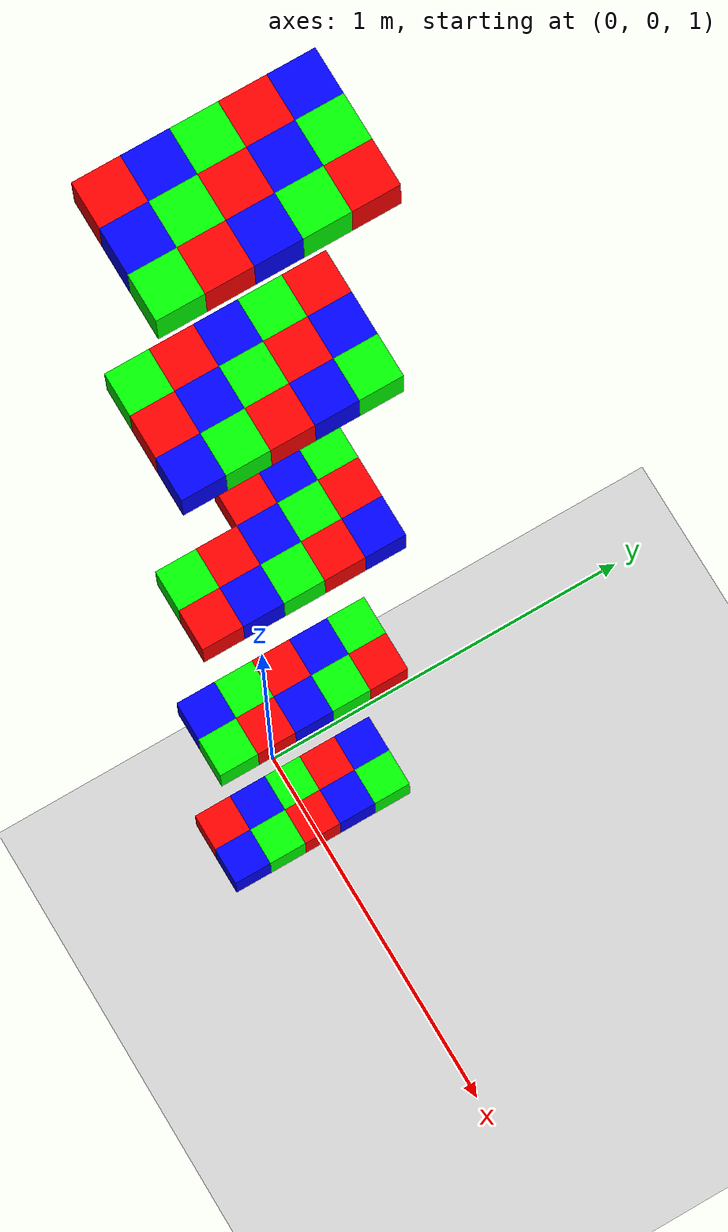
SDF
<sdf version="1.12">
 <world name="boxes_stack">
  <model name="ground_plane">
   <static>true</static>
   <link name="link">
    <collision name="collision"><geometry><plane><normal>0 0 1</normal></plane></geometry></collision>
    <visual name="visual">
     <geometry><plane><normal>0 0 1</normal><size>100 100</size></plane></geometry>
     <material>
      <ambient>0.8 0.8 0.8 1</ambient>
      <diffuse>0.8 0.8 0.8 1</diffuse>
      <specular>0.8 0.8 0.8 1</specular>
     </material>
    </visual>
   </link>
  </model>
  <model name="box_15">
   <pose>0.1 -0.2 1.05 0 0 0</pose>
   <link name="box_link">
    <inertial auto="true"/>
    <collision name="box_collision">
     <density>1000</density>
     <geometry><box><size>0.1 0.1 0.1</size></box></geometry>
    </collision>
    <visual name="box_visual">
     <geometry><box><size>0.1 0.1 0.1</size></box></geometry>
     <material>
      <ambient>1 0 0 1</ambient>
      <diffuse>1 0 0 1</diffuse>
      <specular>1 1 1 1</specular>
      <pbr><metal><metalness>0.1</metalness><roughness>0.3</roughness></metal></pbr>
     </material>
    </visual>
   </link>
  </model>
  <model name="box_16">
   <pose>0.1 -0.1 1.05 0 0 0</pose>
   <link name="box_link">
    <inertial auto="true"/>
    <collision name="box_collision">
     <density>1000</density>
     <geometry><box><size>0.1 0.1 0.1</size></box></geometry>
    </collision>
    <visual name="box_visual">
     <geometry><box><size>0.1 0.1 0.1</size></box></geometry>
     <material>
      <ambient>0 0 1 1</ambient>
      <diffuse>0 0 1 1</diffuse>
      <specular>1 1 1 1</specular>
      <pbr><metal><metalness>0.1</metalness><roughness>0.3</roughness></metal></pbr>
     </material>
    </visual>
   </link>
  </model>
  <model name="box_17">
   <pose>0.1 0 1.05 0 0 0</pose>
   <link name="box_link">
    <inertial auto="true"/>
    <collision name="box_collision">
     <density>1000</density>
     <geometry><box><size>0.1 0.1 0.1</size></box></geometry>
    </collision>
    <visual name="box_visual">
     <geometry><box><size>0.1 0.1 0.1</size></box></geometry>
     <material>
      <ambient>0 1 0 1</ambient>
      <diffuse>0 1 0 1</diffuse>
      <specular>1 1 1 1</specular>
      <pbr><metal><metalness>0.1</metalness><roughness>0.3</roughness></metal></pbr>
     </material>
    </visual>
   </link>
  </model>
  <model name="box_18">
   <pose>0.1 0.1 1.05 0 0 0</pose>
   <link name="box_link">
    <inertial auto="true"/>
    <collision name="box_collision">
     <density>1000</density>
     <geometry><box><size>0.1 0.1 0.1</size></box></geometry>
    </collision>
    <visual name="box_visual">
     <geometry><box><size>0.1 0.1 0.1</size></box></geometry>
     <material>
      <ambient>1 0 0 1</ambient>
      <diffuse>1 0 0 1</diffuse>
      <specular>1 1 1 1</specular>
      <pbr><metal><metalness>0.1</metalness><roughness>0.3</roughness></metal></pbr>
     </material>
    </visual>
   </link>
  </model>
  <model name="box_19">
   <pose>0.1 0.2 1.05 0 0 0</pose>
   <link name="box_link">
    <inertial auto="true"/>
    <collision name="box_collision">
     <density>1000</density>
     <geometry><box><size>0.1 0.1 0.1</size></box></geometry>
    </collision>
    <visual name="box_visual">
     <geometry><box><size>0.1 0.1 0.1</size></box></geometry>
     <material>
      <ambient>0 0 1 1</ambient>
      <diffuse>0 0 1 1</diffuse>
      <specular>1 1 1 1</specular>
      <pbr><metal><metalness>0.1</metalness><roughness>0.3</roughness></metal></pbr>
     </material>
    </visual>
   </link>
  </model>
  <model name="box_20">
   <pose>0.2 -0.2 1.05 0 0 0</pose>
   <link name="box_link">
    <inertial auto="true"/>
    <collision name="box_collision">
     <density>1000</density>
     <geometry><box><size>0.1 0.1 0.1</size></box></geometry>
    </collision>
    <visual name="box_visual">
     <geometry><box><size>0.1 0.1 0.1</size></box></geometry>
     <material>
      <ambient>0 0 1 1</ambient>
      <diffuse>0 0 1 1</diffuse>
      <specular>1 1 1 1</specular>
      <pbr><metal><metalness>0.1</metalness><roughness>0.3</roughness></metal></pbr>
     </material>
    </visual>
   </link>
  </model>
  <model name="box_21">
   <pose>0.2 -0.1 1.05 0 0 0</pose>
   <link name="box_link">
    <inertial auto="true"/>
    <collision name="box_collision">
     <density>1000</density>
     <geometry><box><size>0.1 0.1 0.1</size></box></geometry>
    </collision>
    <visual name="box_visual">
     <geometry><box><size>0.1 0.1 0.1</size></box></geometry>
     <material>
      <ambient>0 1 0 1</ambient>
      <diffuse>0 1 0 1</diffuse>
      <specular>1 1 1 1</specular>
      <pbr><metal><metalness>0.1</metalness><roughness>0.3</roughness></metal></pbr>
     </material>
    </visual>
   </link>
  </model>
  <model name="box_22">
   <pose>0.2 0 1.05 0 0 0</pose>
   <link name="box_link">
    <inertial auto="true"/>
    <collision name="box_collision">
     <density>1000</density>
     <geometry><box><size>0.1 0.1 0.1</size></box></geometry>
    </collision>
    <visual name="box_visual">
     <geometry><box><size>0.1 0.1 0.1</size></box></geometry>
     <material>
      <ambient>1 0 0 1</ambient>
      <diffuse>1 0 0 1</diffuse>
      <specular>1 1 1 1</specular>
      <pbr><metal><metalness>0.1</metalness><roughness>0.3</roughness></metal></pbr>
     </material>
    </visual>
   </link>
  </model>
  <model name="box_23">
   <pose>0.2 0.1 1.05 0 0 0</pose>
   <link name="box_link">
    <inertial auto="true"/>
    <collision name="box_collision">
     <density>1000</density>
     <geometry><box><size>0.1 0.1 0.1</size></box></geometry>
    </collision>
    <visual name="box_visual">
     <geometry><box><size>0.1 0.1 0.1</size></box></geometry>
     <material>
      <ambient>0 0 1 1</ambient>
      <diffuse>0 0 1 1</diffuse>
      <specular>1 1 1 1</specular>
      <pbr><metal><metalness>0.1</metalness><roughness>0.3</roughness></metal></pbr>
     </material>
    </visual>
   </link>
  </model>
  <model name="box_24">
   <pose>0.2 0.2 1.05 0 0 0</pose>
   <link name="box_link">
    <inertial auto="true"/>
    <collision name="box_collision">
     <density>1000</density>
     <geometry><box><size>0.1 0.1 0.1</size></box></geometry>
    </collision>
    <visual name="box_visual">
     <geometry><box><size>0.1 0.1 0.1</size></box></geometry>
     <material>
      <ambient>0 1 0 1</ambient>
      <diffuse>0 1 0 1</diffuse>
      <specular>1 1 1 1</specular>
      <pbr><metal><metalness>0.1</metalness><roughness>0.3</roughness></metal></pbr>
     </material>
    </visual>
   </link>
  </model>
  <model name="box_40">
   <pose>0.1 -0.2 2.15 0 0 0</pose>
   <link name="box_link">
    <inertial auto="true"/>
    <collision name="box_collision">
     <density>1000</density>
     <geometry><box><size>0.1 0.1 0.1</size></box></geometry>
    </collision>
    <visual name="box_visual">
     <geometry><box><size>0.1 0.1 0.1</size></box></geometry>
     <material>
      <ambient>0 0 1 1</ambient>
      <diffuse>0 0 1 1</diffuse>
      <specular>1 1 1 1</specular>
      <pbr><metal><metalness>0.1</metalness><roughness>0.3</roughness></metal></pbr>
     </material>
    </visual>
   </link>
  </model>
  <model name="box_41">
   <pose>0.1 -0.1 2.15 0 0 0</pose>
   <link name="box_link">
    <inertial auto="true"/>
    <collision name="box_collision">
     <density>1000</density>
     <geometry><box><size>0.1 0.1 0.1</size></box></geometry>
    </collision>
    <visual name="box_visual">
     <geometry><box><size>0.1 0.1 0.1</size></box></geometry>
     <material>
      <ambient>0 1 0 1</ambient>
      <diffuse>0 1 0 1</diffuse>
      <specular>1 1 1 1</specular>
      <pbr><metal><metalness>0.1</metalness><roughness>0.3</roughness></metal></pbr>
     </material>
    </visual>
   </link>
  </model>
  <model name="box_42">
   <pose>0.1 0 2.15 0 0 0</pose>
   <link name="box_link">
    <inertial auto="true"/>
    <collision name="box_collision">
     <density>1000</density>
     <geometry><box><size>0.1 0.1 0.1</size></box></geometry>
    </collision>
    <visual name="box_visual">
     <geometry><box><size>0.1 0.1 0.1</size></box></geometry>
     <material>
      <ambient>1 0 0 1</ambient>
      <diffuse>1 0 0 1</diffuse>
      <specular>1 1 1 1</specular>
      <pbr><metal><metalness>0.1</metalness><roughness>0.3</roughness></metal></pbr>
     </material>
    </visual>
   </link>
  </model>
  <model name="box_43">
   <pose>0.1 0.1 2.15 0 0 0</pose>
   <link name="box_link">
    <inertial auto="true"/>
    <collision name="box_collision">
     <density>1000</density>
     <geometry><box><size>0.1 0.1 0.1</size></box></geometry>
    </collision>
    <visual name="box_visual">
     <geometry><box><size>0.1 0.1 0.1</size></box></geometry>
     <material>
      <ambient>0 0 1 1</ambient>
      <diffuse>0 0 1 1</diffuse>
      <specular>1 1 1 1</specular>
      <pbr><metal><metalness>0.1</metalness><roughness>0.3</roughness></metal></pbr>
     </material>
    </visual>
   </link>
  </model>
  <model name="box_44">
   <pose>0.1 0.2 2.15 0 0 0</pose>
   <link name="box_link">
    <inertial auto="true"/>
    <collision name="box_collision">
     <density>1000</density>
     <geometry><box><size>0.1 0.1 0.1</size></box></geometry>
    </collision>
    <visual name="box_visual">
     <geometry><box><size>0.1 0.1 0.1</size></box></geometry>
     <material>
      <ambient>0 1 0 1</ambient>
      <diffuse>0 1 0 1</diffuse>
      <specular>1 1 1 1</specular>
      <pbr><metal><metalness>0.1</metalness><roughness>0.3</roughness></metal></pbr>
     </material>
    </visual>
   </link>
  </model>
  <model name="box_45">
   <pose>0.2 -0.2 2.15 0 0 0</pose>
   <link name="box_link">
    <inertial auto="true"/>
    <collision name="box_collision">
     <density>1000</density>
     <geometry><box><size>0.1 0.1 0.1</size></box></geometry>
    </collision>
    <visual name="box_visual">
     <geometry><box><size>0.1 0.1 0.1</size></box></geometry>
     <material>
      <ambient>0 1 0 1</ambient>
      <diffuse>0 1 0 1</diffuse>
      <specular>1 1 1 1</specular>
      <pbr><metal><metalness>0.1</metalness><roughness>0.3</roughness></metal></pbr>
     </material>
    </visual>
   </link>
  </model>
  <model name="box_46">
   <pose>0.2 -0.1 2.15 0 0 0</pose>
   <link name="box_link">
    <inertial auto="true"/>
    <collision name="box_collision">
     <density>1000</density>
     <geometry><box><size>0.1 0.1 0.1</size></box></geometry>
    </collision>
    <visual name="box_visual">
     <geometry><box><size>0.1 0.1 0.1</size></box></geometry>
     <material>
      <ambient>1 0 0 1</ambient>
      <diffuse>1 0 0 1</diffuse>
      <specular>1 1 1 1</specular>
      <pbr><metal><metalness>0.1</metalness><roughness>0.3</roughness></metal></pbr>
     </material>
    </visual>
   </link>
  </model>
  <model name="box_47">
   <pose>0.2 0 2.15 0 0 0</pose>
   <link name="box_link">
    <inertial auto="true"/>
    <collision name="box_collision">
     <density>1000</density>
     <geometry><box><size>0.1 0.1 0.1</size></box></geometry>
    </collision>
    <visual name="box_visual">
     <geometry><box><size>0.1 0.1 0.1</size></box></geometry>
     <material>
      <ambient>0 0 1 1</ambient>
      <diffuse>0 0 1 1</diffuse>
      <specular>1 1 1 1</specular>
      <pbr><metal><metalness>0.1</metalness><roughness>0.3</roughness></metal></pbr>
     </material>
    </visual>
   </link>
  </model>
  <model name="box_48">
   <pose>0.2 0.1 2.15 0 0 0</pose>
   <link name="box_link">
    <inertial auto="true"/>
    <collision name="box_collision">
     <density>1000</density>
     <geometry><box><size>0.1 0.1 0.1</size></box></geometry>
    </collision>
    <visual name="box_visual">
     <geometry><box><size>0.1 0.1 0.1</size></box></geometry>
     <material>
      <ambient>0 1 0 1</ambient>
      <diffuse>0 1 0 1</diffuse>
      <specular>1 1 1 1</specular>
      <pbr><metal><metalness>0.1</metalness><roughness>0.3</roughness></metal></pbr>
     </material>
    </visual>
   </link>
  </model>
  <model name="box_49">
   <pose>0.2 0.2 2.15 0 0 0</pose>
   <link name="box_link">
    <inertial auto="true"/>
    <collision name="box_collision">
     <density>1000</density>
     <geometry><box><size>0.1 0.1 0.1</size></box></geometry>
    </collision>
    <visual name="box_visual">
     <geometry><box><size>0.1 0.1 0.1</size></box></geometry>
     <material>
      <ambient>1 0 0 1</ambient>
      <diffuse>1 0 0 1</diffuse>
      <specular>1 1 1 1</specular>
      <pbr><metal><metalness>0.1</metalness><roughness>0.3</roughness></metal></pbr>
     </material>
    </visual>
   </link>
  </model>
  <model name="box_62">
   <pose>0 0 3.25 0 0 0</pose>
   <link name="box_link">
    <inertial auto="true"/>
    <collision name="box_collision">
     <density>1000</density>
     <geometry><box><size>0.1 0.1 0.1</size></box></geometry>
    </collision>
    <visual name="box_visual">
     <geometry><box><size>0.1 0.1 0.1</size></box></geometry>
     <material>
      <ambient>1 0 0 1</ambient>
      <diffuse>1 0 0 1</diffuse>
      <specular>1 1 1 1</specular>
      <pbr><metal><metalness>0.1</metalness><roughness>0.3</roughness></metal></pbr>
     </material>
    </visual>
   </link>
  </model>
  <model name="box_63">
   <pose>0 0.1 3.25 0 0 0</pose>
   <link name="box_link">
    <inertial auto="true"/>
    <collision name="box_collision">
     <density>1000</density>
     <geometry><box><size>0.1 0.1 0.1</size></box></geometry>
    </collision>
    <visual name="box_visual">
     <geometry><box><size>0.1 0.1 0.1</size></box></geometry>
     <material>
      <ambient>0 0 1 1</ambient>
      <diffuse>0 0 1 1</diffuse>
      <specular>1 1 1 1</specular>
      <pbr><metal><metalness>0.1</metalness><roughness>0.3</roughness></metal></pbr>
     </material>
    </visual>
   </link>
  </model>
  <model name="box_64">
   <pose>0 0.2 3.25 0 0 0</pose>
   <link name="box_link">
    <inertial auto="true"/>
    <collision name="box_collision">
     <density>1000</density>
     <geometry><box><size>0.1 0.1 0.1</size></box></geometry>
    </collision>
    <visual name="box_visual">
     <geometry><box><size>0.1 0.1 0.1</size></box></geometry>
     <material>
      <ambient>0 1 0 1</ambient>
      <diffuse>0 1 0 1</diffuse>
      <specular>1 1 1 1</specular>
      <pbr><metal><metalness>0.1</metalness><roughness>0.3</roughness></metal></pbr>
     </material>
    </visual>
   </link>
  </model>
  <model name="box_65">
   <pose>0.1 -0.2 3.25 0 0 0</pose>
   <link name="box_link">
    <inertial auto="true"/>
    <collision name="box_collision">
     <density>1000</density>
     <geometry><box><size>0.1 0.1 0.1</size></box></geometry>
    </collision>
    <visual name="box_visual">
     <geometry><box><size>0.1 0.1 0.1</size></box></geometry>
     <material>
      <ambient>0 1 0 1</ambient>
      <diffuse>0 1 0 1</diffuse>
      <specular>1 1 1 1</specular>
      <pbr><metal><metalness>0.1</metalness><roughness>0.3</roughness></metal></pbr>
     </material>
    </visual>
   </link>
  </model>
  <model name="box_66">
   <pose>0.1 -0.1 3.25 0 0 0</pose>
   <link name="box_link">
    <inertial auto="true"/>
    <collision name="box_collision">
     <density>1000</density>
     <geometry><box><size>0.1 0.1 0.1</size></box></geometry>
    </collision>
    <visual name="box_visual">
     <geometry><box><size>0.1 0.1 0.1</size></box></geometry>
     <material>
      <ambient>1 0 0 1</ambient>
      <diffuse>1 0 0 1</diffuse>
      <specular>1 1 1 1</specular>
      <pbr><metal><metalness>0.1</metalness><roughness>0.3</roughness></metal></pbr>
     </material>
    </visual>
   </link>
  </model>
  <model name="box_67">
   <pose>0.1 0 3.25 0 0 0</pose>
   <link name="box_link">
    <inertial auto="true"/>
    <collision name="box_collision">
     <density>1000</density>
     <geometry><box><size>0.1 0.1 0.1</size></box></geometry>
    </collision>
    <visual name="box_visual">
     <geometry><box><size>0.1 0.1 0.1</size></box></geometry>
     <material>
      <ambient>0 0 1 1</ambient>
      <diffuse>0 0 1 1</diffuse>
      <specular>1 1 1 1</specular>
      <pbr><metal><metalness>0.1</metalness><roughness>0.3</roughness></metal></pbr>
     </material>
    </visual>
   </link>
  </model>
  <model name="box_68">
   <pose>0.1 0.1 3.25 0 0 0</pose>
   <link name="box_link">
    <inertial auto="true"/>
    <collision name="box_collision">
     <density>1000</density>
     <geometry><box><size>0.1 0.1 0.1</size></box></geometry>
    </collision>
    <visual name="box_visual">
     <geometry><box><size>0.1 0.1 0.1</size></box></geometry>
     <material>
      <ambient>0 1 0 1</ambient>
      <diffuse>0 1 0 1</diffuse>
      <specular>1 1 1 1</specular>
      <pbr><metal><metalness>0.1</metalness><roughness>0.3</roughness></metal></pbr>
     </material>
    </visual>
   </link>
  </model>
  <model name="box_69">
   <pose>0.1 0.2 3.25 0 0 0</pose>
   <link name="box_link">
    <inertial auto="true"/>
    <collision name="box_collision">
     <density>1000</density>
     <geometry><box><size>0.1 0.1 0.1</size></box></geometry>
    </collision>
    <visual name="box_visual">
     <geometry><box><size>0.1 0.1 0.1</size></box></geometry>
     <material>
      <ambient>1 0 0 1</ambient>
      <diffuse>1 0 0 1</diffuse>
      <specular>1 1 1 1</specular>
      <pbr><metal><metalness>0.1</metalness><roughness>0.3</roughness></metal></pbr>
     </material>
    </visual>
   </link>
  </model>
  <model name="box_70">
   <pose>0.2 -0.2 3.25 0 0 0</pose>
   <link name="box_link">
    <inertial auto="true"/>
    <collision name="box_collision">
     <density>1000</density>
     <geometry><box><size>0.1 0.1 0.1</size></box></geometry>
    </collision>
    <visual name="box_visual">
     <geometry><box><size>0.1 0.1 0.1</size></box></geometry>
     <material>
      <ambient>1 0 0 1</ambient>
      <diffuse>1 0 0 1</diffuse>
      <specular>1 1 1 1</specular>
      <pbr><metal><metalness>0.1</metalness><roughness>0.3</roughness></metal></pbr>
     </material>
    </visual>
   </link>
  </model>
  <model name="box_71">
   <pose>0.2 -0.1 3.25 0 0 0</pose>
   <link name="box_link">
    <inertial auto="true"/>
    <collision name="box_collision">
     <density>1000</density>
     <geometry><box><size>0.1 0.1 0.1</size></box></geometry>
    </collision>
    <visual name="box_visual">
     <geometry><box><size>0.1 0.1 0.1</size></box></geometry>
     <material>
      <ambient>0 0 1 1</ambient>
      <diffuse>0 0 1 1</diffuse>
      <specular>1 1 1 1</specular>
      <pbr><metal><metalness>0.1</metalness><roughness>0.3</roughness></metal></pbr>
     </material>
    </visual>
   </link>
  </model>
  <model name="box_72">
   <pose>0.2 0 3.25 0 0 0</pose>
   <link name="box_link">
    <inertial auto="true"/>
    <collision name="box_collision">
     <density>1000</density>
     <geometry><box><size>0.1 0.1 0.1</size></box></geometry>
    </collision>
    <visual name="box_visual">
     <geometry><box><size>0.1 0.1 0.1</size></box></geometry>
     <material>
      <ambient>0 1 0 1</ambient>
      <diffuse>0 1 0 1</diffuse>
      <specular>1 1 1 1</specular>
      <pbr><metal><metalness>0.1</metalness><roughness>0.3</roughness></metal></pbr>
     </material>
    </visual>
   </link>
  </model>
  <model name="box_73">
   <pose>0.2 0.1 3.25 0 0 0</pose>
   <link name="box_link">
    <inertial auto="true"/>
    <collision name="box_collision">
     <density>1000</density>
     <geometry><box><size>0.1 0.1 0.1</size></box></geometry>
    </collision>
    <visual name="box_visual">
     <geometry><box><size>0.1 0.1 0.1</size></box></geometry>
     <material>
      <ambient>1 0 0 1</ambient>
      <diffuse>1 0 0 1</diffuse>
      <specular>1 1 1 1</specular>
      <pbr><metal><metalness>0.1</metalness><roughness>0.3</roughness></metal></pbr>
     </material>
    </visual>
   </link>
  </model>
  <model name="box_74">
   <pose>0.2 0.2 3.25 0 0 0</pose>
   <link name="box_link">
    <inertial auto="true"/>
    <collision name="box_collision">
     <density>1000</density>
     <geometry><box><size>0.1 0.1 0.1</size></box></geometry>
    </collision>
    <visual name="box_visual">
     <geometry><box><size>0.1 0.1 0.1</size></box></geometry>
     <material>
      <ambient>0 0 1 1</ambient>
      <diffuse>0 0 1 1</diffuse>
      <specular>1 1 1 1</specular>
      <pbr><metal><metalness>0.1</metalness><roughness>0.3</roughness></metal></pbr>
     </material>
    </visual>
   </link>
  </model>
  <model name="box_85">
   <pose>0 -0.2 4.35 0 0 0</pose>
   <link name="box_link">
    <inertial auto="true"/>
    <collision name="box_collision">
     <density>1000</density>
     <geometry><box><size>0.1 0.1 0.1</size></box></geometry>
    </collision>
    <visual name="box_visual">
     <geometry><box><size>0.1 0.1 0.1</size></box></geometry>
     <material>
      <ambient>0 1 0 1</ambient>
      <diffuse>0 1 0 1</diffuse>
      <specular>1 1 1 1</specular>
      <pbr><metal><metalness>0.1</metalness><roughness>0.3</roughness></metal></pbr>
     </material>
    </visual>
   </link>
  </model>
  <model name="box_86">
   <pose>0 -0.1 4.35 0 0 0</pose>
   <link name="box_link">
    <inertial auto="true"/>
    <collision name="box_collision">
     <density>1000</density>
     <geometry><box><size>0.1 0.1 0.1</size></box></geometry>
    </collision>
    <visual name="box_visual">
     <geometry><box><size>0.1 0.1 0.1</size></box></geometry>
     <material>
      <ambient>1 0 0 1</ambient>
      <diffuse>1 0 0 1</diffuse>
      <specular>1 1 1 1</specular>
      <pbr><metal><metalness>0.1</metalness><roughness>0.3</roughness></metal></pbr>
     </material>
    </visual>
   </link>
  </model>
  <model name="box_87">
   <pose>0 0 4.35 0 0 0</pose>
   <link name="box_link">
    <inertial auto="true"/>
    <collision name="box_collision">
     <density>1000</density>
     <geometry><box><size>0.1 0.1 0.1</size></box></geometry>
    </collision>
    <visual name="box_visual">
     <geometry><box><size>0.1 0.1 0.1</size></box></geometry>
     <material>
      <ambient>0 0 1 1</ambient>
      <diffuse>0 0 1 1</diffuse>
      <specular>1 1 1 1</specular>
      <pbr><metal><metalness>0.1</metalness><roughness>0.3</roughness></metal></pbr>
     </material>
    </visual>
   </link>
  </model>
  <model name="box_88">
   <pose>0 0.1 4.35 0 0 0</pose>
   <link name="box_link">
    <inertial auto="true"/>
    <collision name="box_collision">
     <density>1000</density>
     <geometry><box><size>0.1 0.1 0.1</size></box></geometry>
    </collision>
    <visual name="box_visual">
     <geometry><box><size>0.1 0.1 0.1</size></box></geometry>
     <material>
      <ambient>0 1 0 1</ambient>
      <diffuse>0 1 0 1</diffuse>
      <specular>1 1 1 1</specular>
      <pbr><metal><metalness>0.1</metalness><roughness>0.3</roughness></metal></pbr>
     </material>
    </visual>
   </link>
  </model>
  <model name="box_89">
   <pose>0 0.2 4.35 0 0 0</pose>
   <link name="box_link">
    <inertial auto="true"/>
    <collision name="box_collision">
     <density>1000</density>
     <geometry><box><size>0.1 0.1 0.1</size></box></geometry>
    </collision>
    <visual name="box_visual">
     <geometry><box><size>0.1 0.1 0.1</size></box></geometry>
     <material>
      <ambient>1 0 0 1</ambient>
      <diffuse>1 0 0 1</diffuse>
      <specular>1 1 1 1</specular>
      <pbr><metal><metalness>0.1</metalness><roughness>0.3</roughness></metal></pbr>
     </material>
    </visual>
   </link>
  </model>
  <model name="box_90">
   <pose>0.1 -0.2 4.35 0 0 0</pose>
   <link name="box_link">
    <inertial auto="true"/>
    <collision name="box_collision">
     <density>1000</density>
     <geometry><box><size>0.1 0.1 0.1</size></box></geometry>
    </collision>
    <visual name="box_visual">
     <geometry><box><size>0.1 0.1 0.1</size></box></geometry>
     <material>
      <ambient>1 0 0 1</ambient>
      <diffuse>1 0 0 1</diffuse>
      <specular>1 1 1 1</specular>
      <pbr><metal><metalness>0.1</metalness><roughness>0.3</roughness></metal></pbr>
     </material>
    </visual>
   </link>
  </model>
  <model name="box_91">
   <pose>0.1 -0.1 4.35 0 0 0</pose>
   <link name="box_link">
    <inertial auto="true"/>
    <collision name="box_collision">
     <density>1000</density>
     <geometry><box><size>0.1 0.1 0.1</size></box></geometry>
    </collision>
    <visual name="box_visual">
     <geometry><box><size>0.1 0.1 0.1</size></box></geometry>
     <material>
      <ambient>0 0 1 1</ambient>
      <diffuse>0 0 1 1</diffuse>
      <specular>1 1 1 1</specular>
      <pbr><metal><metalness>0.1</metalness><roughness>0.3</roughness></metal></pbr>
     </material>
    </visual>
   </link>
  </model>
  <model name="box_92">
   <pose>0.1 0 4.35 0 0 0</pose>
   <link name="box_link">
    <inertial auto="true"/>
    <collision name="box_collision">
     <density>1000</density>
     <geometry><box><size>0.1 0.1 0.1</size></box></geometry>
    </collision>
    <visual name="box_visual">
     <geometry><box><size>0.1 0.1 0.1</size></box></geometry>
     <material>
      <ambient>0 1 0 1</ambient>
      <diffuse>0 1 0 1</diffuse>
      <specular>1 1 1 1</specular>
      <pbr><metal><metalness>0.1</metalness><roughness>0.3</roughness></metal></pbr>
     </material>
    </visual>
   </link>
  </model>
  <model name="box_93">
   <pose>0.1 0.1 4.35 0 0 0</pose>
   <link name="box_link">
    <inertial auto="true"/>
    <collision name="box_collision">
     <density>1000</density>
     <geometry><box><size>0.1 0.1 0.1</size></box></geometry>
    </collision>
    <visual name="box_visual">
     <geometry><box><size>0.1 0.1 0.1</size></box></geometry>
     <material>
      <ambient>1 0 0 1</ambient>
      <diffuse>1 0 0 1</diffuse>
      <specular>1 1 1 1</specular>
      <pbr><metal><metalness>0.1</metalness><roughness>0.3</roughness></metal></pbr>
     </material>
    </visual>
   </link>
  </model>
  <model name="box_94">
   <pose>0.1 0.2 4.35 0 0 0</pose>
   <link name="box_link">
    <inertial auto="true"/>
    <collision name="box_collision">
     <density>1000</density>
     <geometry><box><size>0.1 0.1 0.1</size></box></geometry>
    </collision>
    <visual name="box_visual">
     <geometry><box><size>0.1 0.1 0.1</size></box></geometry>
     <material>
      <ambient>0 0 1 1</ambient>
      <diffuse>0 0 1 1</diffuse>
      <specular>1 1 1 1</specular>
      <pbr><metal><metalness>0.1</metalness><roughness>0.3</roughness></metal></pbr>
     </material>
    </visual>
   </link>
  </model>
  <model name="box_95">
   <pose>0.2 -0.2 4.35 0 0 0</pose>
   <link name="box_link">
    <inertial auto="true"/>
    <collision name="box_collision">
     <density>1000</density>
     <geometry><box><size>0.1 0.1 0.1</size></box></geometry>
    </collision>
    <visual name="box_visual">
     <geometry><box><size>0.1 0.1 0.1</size></box></geometry>
     <material>
      <ambient>0 0 1 1</ambient>
      <diffuse>0 0 1 1</diffuse>
      <specular>1 1 1 1</specular>
      <pbr><metal><metalness>0.1</metalness><roughness>0.3</roughness></metal></pbr>
     </material>
    </visual>
   </link>
  </model>
  <model name="box_96">
   <pose>0.2 -0.1 4.35 0 0 0</pose>
   <link name="box_link">
    <inertial auto="true"/>
    <collision name="box_collision">
     <density>1000</density>
     <geometry><box><size>0.1 0.1 0.1</size></box></geometry>
    </collision>
    <visual name="box_visual">
     <geometry><box><size>0.1 0.1 0.1</size></box></geometry>
     <material>
      <ambient>0 1 0 1</ambient>
      <diffuse>0 1 0 1</diffuse>
      <specular>1 1 1 1</specular>
      <pbr><metal><metalness>0.1</metalness><roughness>0.3</roughness></metal></pbr>
     </material>
    </visual>
   </link>
  </model>
  <model name="box_97">
   <pose>0.2 0 4.35 0 0 0</pose>
   <link name="box_link">
    <inertial auto="true"/>
    <collision name="box_collision">
     <density>1000</density>
     <geometry><box><size>0.1 0.1 0.1</size></box></geometry>
    </collision>
    <visual name="box_visual">
     <geometry><box><size>0.1 0.1 0.1</size></box></geometry>
     <material>
      <ambient>1 0 0 1</ambient>
      <diffuse>1 0 0 1</diffuse>
      <specular>1 1 1 1</specular>
      <pbr><metal><metalness>0.1</metalness><roughness>0.3</roughness></metal></pbr>
     </material>
    </visual>
   </link>
  </model>
  <model name="box_98">
   <pose>0.2 0.1 4.35 0 0 0</pose>
   <link name="box_link">
    <inertial auto="true"/>
    <collision name="box_collision">
     <density>1000</density>
     <geometry><box><size>0.1 0.1 0.1</size></box></geometry>
    </collision>
    <visual name="box_visual">
     <geometry><box><size>0.1 0.1 0.1</size></box></geometry>
     <material>
      <ambient>0 0 1 1</ambient>
      <diffuse>0 0 1 1</diffuse>
      <specular>1 1 1 1</specular>
      <pbr><metal><metalness>0.1</metalness><roughness>0.3</roughness></metal></pbr>
     </material>
    </visual>
   </link>
  </model>
  <model name="box_99">
   <pose>0.2 0.2 4.35 0 0 0</pose>
   <link name="box_link">
    <inertial auto="true"/>
    <collision name="box_collision">
     <density>1000</density>
     <geometry><box><size>0.1 0.1 0.1</size></box></geometry>
    </collision>
    <visual name="box_visual">
     <geometry><box><size>0.1 0.1 0.1</size></box></geometry>
     <material>
      <ambient>0 1 0 1</ambient>
      <diffuse>0 1 0 1</diffuse>
      <specular>1 1 1 1</specular>
      <pbr><metal><metalness>0.1</metalness><roughness>0.3</roughness></metal></pbr>
     </material>
    </visual>
   </link>
  </model>
  <model name="box_110">
   <pose>0 -0.2 5.45 0 0 0</pose>
   <link name="box_link">
    <inertial auto="true"/>
    <collision name="box_collision">
     <density>1000</density>
     <geometry><box><size>0.1 0.1 0.1</size></box></geometry>
    </collision>
    <visual name="box_visual">
     <geometry><box><size>0.1 0.1 0.1</size></box></geometry>
     <material>
      <ambient>1 0 0 1</ambient>
      <diffuse>1 0 0 1</diffuse>
      <specular>1 1 1 1</specular>
      <pbr><metal><metalness>0.1</metalness><roughness>0.3</roughness></metal></pbr>
     </material>
    </visual>
   </link>
  </model>
  <model name="box_111">
   <pose>0 -0.1 5.45 0 0 0</pose>
   <link name="box_link">
    <inertial auto="true"/>
    <collision name="box_collision">
     <density>1000</density>
     <geometry><box><size>0.1 0.1 0.1</size></box></geometry>
    </collision>
    <visual name="box_visual">
     <geometry><box><size>0.1 0.1 0.1</size></box></geometry>
     <material>
      <ambient>0 0 1 1</ambient>
      <diffuse>0 0 1 1</diffuse>
      <specular>1 1 1 1</specular>
      <pbr><metal><metalness>0.1</metalness><roughness>0.3</roughness></metal></pbr>
     </material>
    </visual>
   </link>
  </model>
  <model name="box_112">
   <pose>0 0 5.45 0 0 0</pose>
   <link name="box_link">
    <inertial auto="true"/>
    <collision name="box_collision">
     <density>1000</density>
     <geometry><box><size>0.1 0.1 0.1</size></box></geometry>
    </collision>
    <visual name="box_visual">
     <geometry><box><size>0.1 0.1 0.1</size></box></geometry>
     <material>
      <ambient>0 1 0 1</ambient>
      <diffuse>0 1 0 1</diffuse>
      <specular>1 1 1 1</specular>
      <pbr><metal><metalness>0.1</metalness><roughness>0.3</roughness></metal></pbr>
     </material>
    </visual>
   </link>
  </model>
  <model name="box_113">
   <pose>0 0.1 5.45 0 0 0</pose>
   <link name="box_link">
    <inertial auto="true"/>
    <collision name="box_collision">
     <density>1000</density>
     <geometry><box><size>0.1 0.1 0.1</size></box></geometry>
    </collision>
    <visual name="box_visual">
     <geometry><box><size>0.1 0.1 0.1</size></box></geometry>
     <material>
      <ambient>1 0 0 1</ambient>
      <diffuse>1 0 0 1</diffuse>
      <specular>1 1 1 1</specular>
      <pbr><metal><metalness>0.1</metalness><roughness>0.3</roughness></metal></pbr>
     </material>
    </visual>
   </link>
  </model>
  <model name="box_114">
   <pose>0 0.2 5.45 0 0 0</pose>
   <link name="box_link">
    <inertial auto="true"/>
    <collision name="box_collision">
     <density>1000</density>
     <geometry><box><size>0.1 0.1 0.1</size></box></geometry>
    </collision>
    <visual name="box_visual">
     <geometry><box><size>0.1 0.1 0.1</size></box></geometry>
     <material>
      <ambient>0 0 1 1</ambient>
      <diffuse>0 0 1 1</diffuse>
      <specular>1 1 1 1</specular>
      <pbr><metal><metalness>0.1</metalness><roughness>0.3</roughness></metal></pbr>
     </material>
    </visual>
   </link>
  </model>
  <model name="box_115">
   <pose>0.1 -0.2 5.45 0 0 0</pose>
   <link name="box_link">
    <inertial auto="true"/>
    <collision name="box_collision">
     <density>1000</density>
     <geometry><box><size>0.1 0.1 0.1</size></box></geometry>
    </collision>
    <visual name="box_visual">
     <geometry><box><size>0.1 0.1 0.1</size></box></geometry>
     <material>
      <ambient>0 0 1 1</ambient>
      <diffuse>0 0 1 1</diffuse>
      <specular>1 1 1 1</specular>
      <pbr><metal><metalness>0.1</metalness><roughness>0.3</roughness></metal></pbr>
     </material>
    </visual>
   </link>
  </model>
  <model name="box_116">
   <pose>0.1 -0.1 5.45 0 0 0</pose>
   <link name="box_link">
    <inertial auto="true"/>
    <collision name="box_collision">
     <density>1000</density>
     <geometry><box><size>0.1 0.1 0.1</size></box></geometry>
    </collision>
    <visual name="box_visual">
     <geometry><box><size>0.1 0.1 0.1</size></box></geometry>
     <material>
      <ambient>0 1 0 1</ambient>
      <diffuse>0 1 0 1</diffuse>
      <specular>1 1 1 1</specular>
      <pbr><metal><metalness>0.1</metalness><roughness>0.3</roughness></metal></pbr>
     </material>
    </visual>
   </link>
  </model>
  <model name="box_117">
   <pose>0.1 0 5.45 0 0 0</pose>
   <link name="box_link">
    <inertial auto="true"/>
    <collision name="box_collision">
     <density>1000</density>
     <geometry><box><size>0.1 0.1 0.1</size></box></geometry>
    </collision>
    <visual name="box_visual">
     <geometry><box><size>0.1 0.1 0.1</size></box></geometry>
     <material>
      <ambient>1 0 0 1</ambient>
      <diffuse>1 0 0 1</diffuse>
      <specular>1 1 1 1</specular>
      <pbr><metal><metalness>0.1</metalness><roughness>0.3</roughness></metal></pbr>
     </material>
    </visual>
   </link>
  </model>
  <model name="box_118">
   <pose>0.1 0.1 5.45 0 0 0</pose>
   <link name="box_link">
    <inertial auto="true"/>
    <collision name="box_collision">
     <density>1000</density>
     <geometry><box><size>0.1 0.1 0.1</size></box></geometry>
    </collision>
    <visual name="box_visual">
     <geometry><box><size>0.1 0.1 0.1</size></box></geometry>
     <material>
      <ambient>0 0 1 1</ambient>
      <diffuse>0 0 1 1</diffuse>
      <specular>1 1 1 1</specular>
      <pbr><metal><metalness>0.1</metalness><roughness>0.3</roughness></metal></pbr>
     </material>
    </visual>
   </link>
  </model>
  <model name="box_119">
   <pose>0.1 0.2 5.45 0 0 0</pose>
   <link name="box_link">
    <inertial auto="true"/>
    <collision name="box_collision">
     <density>1000</density>
     <geometry><box><size>0.1 0.1 0.1</size></box></geometry>
    </collision>
    <visual name="box_visual">
     <geometry><box><size>0.1 0.1 0.1</size></box></geometry>
     <material>
      <ambient>0 1 0 1</ambient>
      <diffuse>0 1 0 1</diffuse>
      <specular>1 1 1 1</specular>
      <pbr><metal><metalness>0.1</metalness><roughness>0.3</roughness></metal></pbr>
     </material>
    </visual>
   </link>
  </model>
  <model name="box_120">
   <pose>0.2 -0.2 5.45 0 0 0</pose>
   <link name="box_link">
    <inertial auto="true"/>
    <collision name="box_collision">
     <density>1000</density>
     <geometry><box><size>0.1 0.1 0.1</size></box></geometry>
    </collision>
    <visual name="box_visual">
     <geometry><box><size>0.1 0.1 0.1</size></box></geometry>
     <material>
      <ambient>0 1 0 1</ambient>
      <diffuse>0 1 0 1</diffuse>
      <specular>1 1 1 1</specular>
      <pbr><metal><metalness>0.1</metalness><roughness>0.3</roughness></metal></pbr>
     </material>
    </visual>
   </link>
  </model>
  <model name="box_121">
   <pose>0.2 -0.1 5.45 0 0 0</pose>
   <link name="box_link">
    <inertial auto="true"/>
    <collision name="box_collision">
     <density>1000</density>
     <geometry><box><size>0.1 0.1 0.1</size></box></geometry>
    </collision>
    <visual name="box_visual">
     <geometry><box><size>0.1 0.1 0.1</size></box></geometry>
     <material>
      <ambient>1 0 0 1</ambient>
      <diffuse>1 0 0 1</diffuse>
      <specular>1 1 1 1</specular>
      <pbr><metal><metalness>0.1</metalness><roughness>0.3</roughness></metal></pbr>
     </material>
    </visual>
   </link>
  </model>
  <model name="box_122">
   <pose>0.2 0 5.45 0 0 0</pose>
   <link name="box_link">
    <inertial auto="true"/>
    <collision name="box_collision">
     <density>1000</density>
     <geometry><box><size>0.1 0.1 0.1</size></box></geometry>
    </collision>
    <visual name="box_visual">
     <geometry><box><size>0.1 0.1 0.1</size></box></geometry>
     <material>
      <ambient>0 0 1 1</ambient>
      <diffuse>0 0 1 1</diffuse>
      <specular>1 1 1 1</specular>
      <pbr><metal><metalness>0.1</metalness><roughness>0.3</roughness></metal></pbr>
     </material>
    </visual>
   </link>
  </model>
  <model name="box_123">
   <pose>0.2 0.1 5.45 0 0 0</pose>
   <link name="box_link">
    <inertial auto="true"/>
    <collision name="box_collision">
     <density>1000</density>
     <geometry><box><size>0.1 0.1 0.1</size></box></geometry>
    </collision>
    <visual name="box_visual">
     <geometry><box><size>0.1 0.1 0.1</size></box></geometry>
     <material>
      <ambient>0 1 0 1</ambient>
      <diffuse>0 1 0 1</diffuse>
      <specular>1 1 1 1</specular>
      <pbr><metal><metalness>0.1</metalness><roughness>0.3</roughness></metal></pbr>
     </material>
    </visual>
   </link>
  </model>
  <model name="box_124">
   <pose>0.2 0.2 5.45 0 0 0</pose>
   <link name="box_link">
    <inertial auto="true"/>
    <collision name="box_collision">
     <density>1000</density>
     <geometry><box><size>0.1 0.1 0.1</size></box></geometry>
    </collision>
    <visual name="box_visual">
     <geometry><box><size>0.1 0.1 0.1</size></box></geometry>
     <material>
      <ambient>1 0 0 1</ambient>
      <diffuse>1 0 0 1</diffuse>
      <specular>1 1 1 1</specular>
      <pbr><metal><metalness>0.1</metalness><roughness>0.3</roughness></metal></pbr>
     </material>
    </visual>
   </link>
  </model>
 </world>
</sdf>
